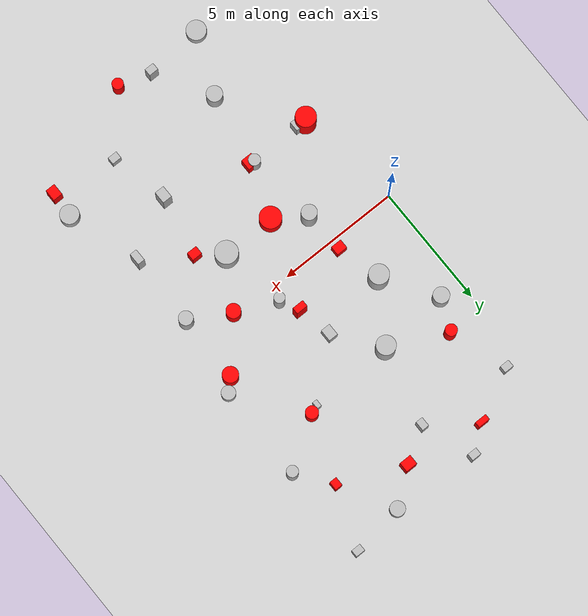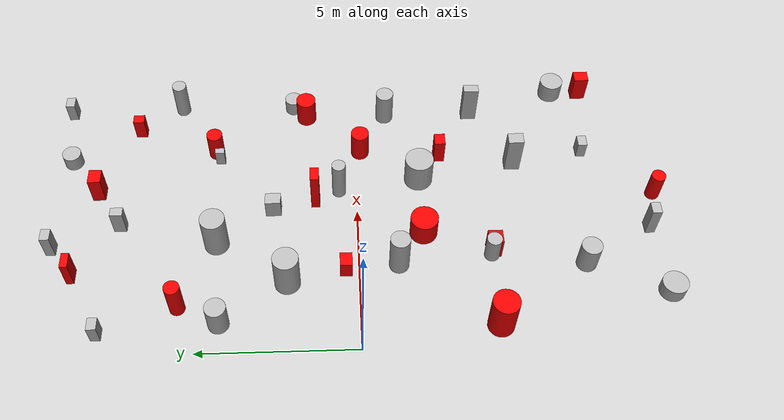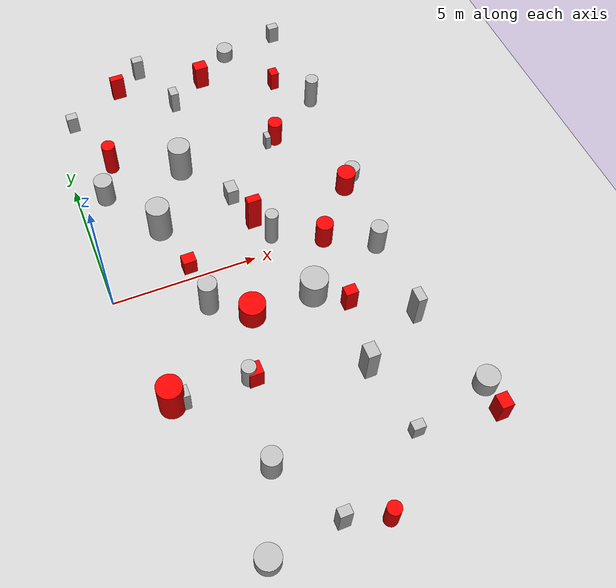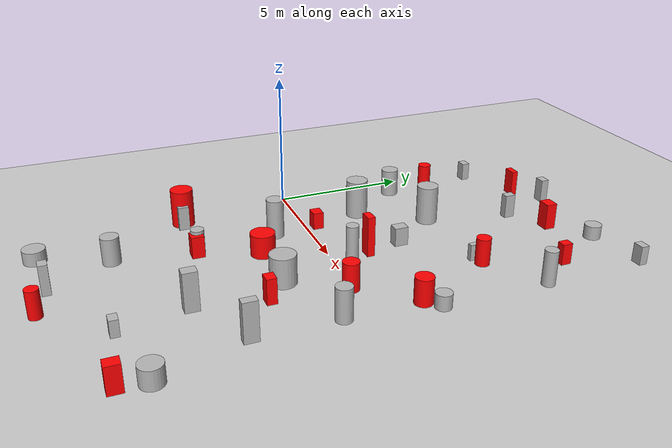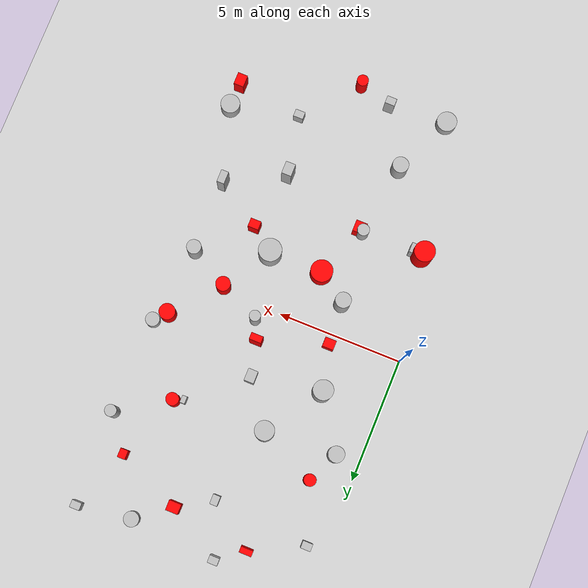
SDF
<sdf version="1.7">
 <world name="default">
  <model name="ground_plane">
   <static>1</static>
   <link name="link">
    <collision name="collision">
     <geometry><plane><normal>0 0 1</normal><size>100 100</size></plane></geometry>
     <surface>
      <contact><collide_bitmask>65535</collide_bitmask></contact>
      <friction><ode><mu>100</mu><mu2>50</mu2></ode></friction>
     </surface>
    </collision>
    <visual name="visual">
     <cast_shadows>0</cast_shadows>
     <geometry><plane><normal>0 0 1</normal><size>100 100</size></plane></geometry>
     <material>
      <script><uri>file://media/materials/scripts/gazebo.material</uri><name>Gazebo/Grey</name></script>
     </material>
    </visual>
   </link>
  </model>
  <model name="cylinder_0_0.7_0.7_1.0">
   <static>true</static>
   <pose>0.9762700785464951 4.30378732744839 0.5224415914984484 0 0 0</pose>
   <link name="link">
    <collision name="collision">
     <geometry>
      <cylinder><radius>0.3270964398016714</radius><length>1.0448831829968968</length></cylinder>
     </geometry>
     <surface>
      <friction><ode><mu>1.0</mu><mu2>1.0</mu2></ode></friction>
      <contact><ode><kp>1e+5</kp><kd>1</kd></ode></contact>
     </surface>
    </collision>
    <visual name="visual">
     <geometry>
      <cylinder><radius>0.3270964398016714</radius><length>1.0448831829968968</length></cylinder>
     </geometry>
    </visual>
    <inertial>
     <mass>1.0</mass>
     <inertia><ixx>0.145833</ixx><ixy>0</ixy><ixz>0</ixz><iyy>0.145833</iyy><iyz>0</iyz><izz>0.125</izz></inertia>
    </inertial>
   </link>
  </model>
  <model name="cylinder_1_0.6_0.6_1.5">
   <static>true</static>
   <pose>2.917882261333123 -1.2482557747461502 0.7318313802505146 0 0 0</pose>
   <link name="link">
    <collision name="collision">
     <geometry>
      <cylinder><radius>0.3150324556477333</radius><length>1.4636627605010293</length></cylinder>
     </geometry>
     <surface>
      <friction><ode><mu>1.0</mu><mu2>1.0</mu2></ode></friction>
      <contact><ode><kp>1e+5</kp><kd>1</kd></ode></contact>
     </surface>
    </collision>
    <visual name="visual">
     <geometry>
      <cylinder><radius>0.3150324556477333</radius><length>1.4636627605010293</length></cylinder>
     </geometry>
    </visual>
    <inertial>
     <mass>1.0</mass>
     <inertia><ixx>0.145833</ixx><ixy>0</ixy><ixz>0</ixz><iyy>0.145833</iyy><iyz>0</iyz><izz>0.125</izz></inertia>
    </inertial>
   </link>
  </model>
  <model name="cylinder_2_0.4_0.4_1.4">
   <static>true</static>
   <pose>5.834500761653292 0.5778983950580887 0.7127983191463305 0 0 0</pose>
   <link name="link">
    <collision name="collision">
     <geometry>
      <cylinder><radius>0.2213108174593661</radius><length>1.425596638292661</length></cylinder>
     </geometry>
     <surface>
      <friction><ode><mu>1.0</mu><mu2>1.0</mu2></ode></friction>
      <contact><ode><kp>1e+5</kp><kd>1</kd></ode></contact>
     </surface>
    </collision>
    <visual name="visual">
     <geometry>
      <cylinder><radius>0.2213108174593661</radius><length>1.425596638292661</length></cylinder>
     </geometry>
    </visual>
    <inertial>
     <mass>1.0</mass>
     <inertia><ixx>0.145833</ixx><ixy>0</ixy><ixz>0</ixz><iyy>0.145833</iyy><iyz>0</iyz><izz>0.125</izz></inertia>
    </inertial>
   </link>
  </model>
  <model name="cylinder_4_0.5_0.5_1.3">
   <static>true</static>
   <pose>9.572366844655281 5.983171284334471 0.6402645881432277 0 0 0</pose>
   <link name="link">
    <collision name="collision">
     <geometry>
      <cylinder><radius>0.23548232776067998</radius><length>1.2805291762864555</length></cylinder>
     </geometry>
     <surface>
      <friction><ode><mu>1.0</mu><mu2>1.0</mu2></ode></friction>
      <contact><ode><kp>1e+5</kp><kd>1</kd></ode></contact>
     </surface>
    </collision>
    <visual name="visual">
     <geometry>
      <cylinder><radius>0.23548232776067998</radius><length>1.2805291762864555</length></cylinder>
     </geometry>
    </visual>
    <inertial>
     <mass>1.0</mass>
     <inertia><ixx>0.145833</ixx><ixy>0</ixy><ixz>0</ixz><iyy>0.145833</iyy><iyz>0</iyz><izz>0.125</izz></inertia>
    </inertial>
   </link>
  </model>
  <model name="cylinder_5_0.6_0.6_1.0">
   <static>true</static>
   <pose>2.798420426550477 -7.132934251819072 0.5109241608750359 0 0 0</pose>
   <link name="link">
    <collision name="collision">
     <geometry>
      <cylinder><radius>0.3243985819971571</radius><length>1.0218483217500718</length></cylinder>
     </geometry>
     <surface>
      <friction><ode><mu>1.0</mu><mu2>1.0</mu2></ode></friction>
      <contact><ode><kp>1e+5</kp><kd>1</kd></ode></contact>
     </surface>
    </collision>
    <visual name="visual">
     <geometry>
      <cylinder><radius>0.3243985819971571</radius><length>1.0218483217500718</length></cylinder>
     </geometry>
    </visual>
    <inertial>
     <mass>1.0</mass>
     <inertia><ixx>0.145833</ixx><ixy>0</ixy><ixz>0</ixz><iyy>0.145833</iyy><iyz>0</iyz><izz>0.125</izz></inertia>
    </inertial>
   </link>
  </model>
  <model name="cylinder_7_0.8_0.8_1.4">
   <static>true</static>
   <pose>2.352709941517542 2.2419144544484286 0.7218740392573121 0 0 0</pose>
   <link name="link">
    <collision name="collision">
     <geometry>
      <cylinder><radius>0.404546089731045</radius><length>1.4437480785146242</length></cylinder>
     </geometry>
     <surface>
      <friction><ode><mu>1.0</mu><mu2>1.0</mu2></ode></friction>
      <contact><ode><kp>1e+5</kp><kd>1</kd></ode></contact>
     </surface>
    </collision>
    <visual name="visual">
     <geometry>
      <cylinder><radius>0.404546089731045</radius><length>1.4437480785146242</length></cylinder>
     </geometry>
    </visual>
    <inertial>
     <mass>1.0</mass>
     <inertia><ixx>0.145833</ixx><ixy>0</ixy><ixz>0</ixz><iyy>0.145833</iyy><iyz>0</iyz><izz>0.125</izz></inertia>
    </inertial>
   </link>
  </model>
  <model name="cylinder_12_0.6_0.6_0.5">
   <static>true</static>
   <pose>9.535221763806742 2.0969103949009202 0.26959389612716034 0 0 0</pose>
   <link name="link">
    <collision name="collision">
     <geometry>
      <cylinder><radius>0.2848420887729229</radius><length>0.5391877922543207</length></cylinder>
     </geometry>
     <surface>
      <friction><ode><mu>1.0</mu><mu2>1.0</mu2></ode></friction>
      <contact><ode><kp>1e+5</kp><kd>1</kd></ode></contact>
     </surface>
    </collision>
    <visual name="visual">
     <geometry>
      <cylinder><radius>0.2848420887729229</radius><length>0.5391877922543207</length></cylinder>
     </geometry>
    </visual>
    <inertial>
     <mass>1.0</mass>
     <inertia><ixx>0.145833</ixx><ixy>0</ixy><ixz>0</ixz><iyy>0.145833</iyy><iyz>0</iyz><izz>0.125</izz></inertia>
    </inertial>
   </link>
  </model>
  <model name="cylinder_16_0.8_0.8_0.5">
   <static>true</static>
   <pose>1.7302586962016626 -9.597849076250128 0.25234773809627353 0 0 0</pose>
   <link name="link">
    <collision name="collision">
     <geometry>
      <cylinder><radius>0.4033449610388691</radius><length>0.5046954761925471</length></cylinder>
     </geometry>
     <surface>
      <friction><ode><mu>1.0</mu><mu2>1.0</mu2></ode></friction>
      <contact><ode><kp>1e+5</kp><kd>1</kd></ode></contact>
     </surface>
    </collision>
    <visual name="visual">
     <geometry>
      <cylinder><radius>0.4033449610388691</radius><length>0.5046954761925471</length></cylinder>
     </geometry>
    </visual>
    <inertial>
     <mass>1.0</mass>
     <inertia><ixx>0.145833</ixx><ixy>0</ixy><ixz>0</ixz><iyy>0.145833</iyy><iyz>0</iyz><izz>0.125</izz></inertia>
    </inertial>
   </link>
  </model>
  <model name="cylinder_17_0.6_0.6_1.2">
   <static>true</static>
   <pose>9.054980230339702 -1.0574924276474533 0.5997396376587522 0 0 0</pose>
   <link name="link">
    <collision name="collision">
     <geometry>
      <cylinder><radius>0.2892310852565401</radius><length>1.1994792753175043</length></cylinder>
     </geometry>
     <surface>
      <friction><ode><mu>1.0</mu><mu2>1.0</mu2></ode></friction>
      <contact><ode><kp>1e+5</kp><kd>1</kd></ode></contact>
     </surface>
    </collision>
    <visual name="visual">
     <geometry>
      <cylinder><radius>0.2892310852565401</radius><length>1.1994792753175043</length></cylinder>
     </geometry>
    </visual>
    <inertial>
     <mass>1.0</mass>
     <inertia><ixx>0.145833</ixx><ixy>0</ixy><ixz>0</ixz><iyy>0.145833</iyy><iyz>0</iyz><izz>0.125</izz></inertia>
    </inertial>
   </link>
  </model>
  <model name="cylinder_18_0.9_0.9_1.1">
   <static>true</static>
   <pose>6.275956394049544 -2.0698851830603076 0.5406364363179293 0 0 0</pose>
   <link name="link">
    <collision name="collision">
     <geometry>
      <cylinder><radius>0.4645206085564558</radius><length>1.0812728726358587</length></cylinder>
     </geometry>
     <surface>
      <friction><ode><mu>1.0</mu><mu2>1.0</mu2></ode></friction>
      <contact><ode><kp>1e+5</kp><kd>1</kd></ode></contact>
     </surface>
    </collision>
    <visual name="visual">
     <geometry>
      <cylinder><radius>0.4645206085564558</radius><length>1.0812728726358587</length></cylinder>
     </geometry>
    </visual>
    <inertial>
     <mass>1.0</mass>
     <inertia><ixx>0.145833</ixx><ixy>0</ixy><ixz>0</ixz><iyy>0.145833</iyy><iyz>0</iyz><izz>0.125</izz></inertia>
    </inertial>
   </link>
  </model>
  <model name="cylinder_19_0.8_0.8_1.5">
   <static>true</static>
   <pose>3.850631801555318 4.50508559639281 0.7280418173616119 0 0 0</pose>
   <link name="link">
    <collision name="collision">
     <geometry>
      <cylinder><radius>0.3931970597688912</radius><length>1.4560836347232238</length></cylinder>
     </geometry>
     <surface>
      <friction><ode><mu>1.0</mu><mu2>1.0</mu2></ode></friction>
      <contact><ode><kp>1e+5</kp><kd>1</kd></ode></contact>
     </surface>
    </collision>
    <visual name="visual">
     <geometry>
      <cylinder><radius>0.3931970597688912</radius><length>1.4560836347232238</length></cylinder>
     </geometry>
    </visual>
    <inertial>
     <mass>1.0</mass>
     <inertia><ixx>0.145833</ixx><ixy>0</ixy><ixz>0</ixz><iyy>0.145833</iyy><iyz>0</iyz><izz>0.125</izz></inertia>
    </inertial>
   </link>
  </model>
  <model name="cylinder_20_0.5_0.5_0.9">
   <static>true</static>
   <pose>3.2034707498537003 -4.198447855791119 0.46438435047288307 0 0 0</pose>
   <link name="link">
    <collision name="collision">
     <geometry>
      <cylinder><radius>0.24064221926673507</radius><length>0.9287687009457661</length></cylinder>
     </geometry>
     <surface>
      <friction><ode><mu>1.0</mu><mu2>1.0</mu2></ode></friction>
      <contact><ode><kp>1e+5</kp><kd>1</kd></ode></contact>
     </surface>
    </collision>
    <visual name="visual">
     <geometry>
      <cylinder><radius>0.24064221926673507</radius><length>0.9287687009457661</length></cylinder>
     </geometry>
    </visual>
    <inertial>
     <mass>1.0</mass>
     <inertia><ixx>0.145833</ixx><ixy>0</ixy><ixz>0</ixz><iyy>0.145833</iyy><iyz>0</iyz><izz>0.125</izz></inertia>
    </inertial>
   </link>
  </model>
  <model name="cylinder_21_0.8_0.8_0.7">
   <static>true</static>
   <pose>9.976940131357331 -7.011033906840125 0.3312464673381874 0 0 0</pose>
   <link name="link">
    <collision name="collision">
     <geometry>
      <cylinder><radius>0.3846678692851533</radius><length>0.6624929346763748</length></cylinder>
     </geometry>
     <surface>
      <friction><ode><mu>1.0</mu><mu2>1.0</mu2></ode></friction>
      <contact><ode><kp>1e+5</kp><kd>1</kd></ode></contact>
     </surface>
    </collision>
    <visual name="visual">
     <geometry>
      <cylinder><radius>0.3846678692851533</radius><length>0.6624929346763748</length></cylinder>
     </geometry>
    </visual>
    <inertial>
     <mass>1.0</mass>
     <inertia><ixx>0.145833</ixx><ixy>0</ixy><ixz>0</ixz><iyy>0.145833</iyy><iyz>0</iyz><izz>0.125</izz></inertia>
    </inertial>
   </link>
  </model>
  <model name="cylinder_23_0.6_0.6_0.5">
   <static>true</static>
   <pose>7.327646518572585 9.510430100057718 0.255857042092501 0 0 0</pose>
   <link name="link">
    <collision name="collision">
     <geometry>
      <cylinder><radius>0.30799341934350916</radius><length>0.511714084185002</length></cylinder>
     </geometry>
     <surface>
      <friction><ode><mu>1.0</mu><mu2>1.0</mu2></ode></friction>
      <contact><ode><kp>1e+5</kp><kd>1</kd></ode></contact>
     </surface>
    </collision>
    <visual name="visual">
     <geometry>
      <cylinder><radius>0.30799341934350916</radius><length>0.511714084185002</length></cylinder>
     </geometry>
    </visual>
    <inertial>
     <mass>1.0</mass>
     <inertia><ixx>0.145833</ixx><ixy>0</ixy><ixz>0</ixz><iyy>0.145833</iyy><iyz>0</iyz><izz>0.125</izz></inertia>
    </inertial>
   </link>
  </model>
  <model name="box_1_0.4_0.3_1.1">
   <static>true</static>
   <pose>4.088288038470655 -9.363221409373843 0.5607392007498817 0 0 0</pose>
   <link name="link">
    <collision name="collision">
     <geometry><box><size>0.4 0.3 1.1</size></box></geometry>
     <surface>
      <friction><ode><mu>1.0</mu><mu2>1.0</mu2></ode></friction>
      <contact><ode><kp>1e+5</kp><kd>1</kd></ode></contact>
     </surface>
    </collision>
    <visual name="visual"><geometry><box><size>0.4 0.3 1.1</size></box></geometry></visual>
    <inertial>
     <mass>1.0</mass>
     <inertia>
      <ixx>0.166667</ixx>
      <ixy>0</ixy>
      <ixz>0</ixz>
      <iyy>0.166667</iyy>
      <iyz>0</iyz>
      <izz>0.166667</izz>
     </inertia>
    </inertial>
   </link>
  </model>
  <model name="box_4_0.4_0.3_0.7">
   <static>true</static>
   <pose>0.731584222174444 7.933425860806842 0.35844849219923697 0 0 0</pose>
   <link name="link">
    <collision name="collision">
     <geometry><box><size>0.4 0.3 0.7</size></box></geometry>
     <surface>
      <friction><ode><mu>1.0</mu><mu2>1.0</mu2></ode></friction>
      <contact><ode><kp>1e+5</kp><kd>1</kd></ode></contact>
     </surface>
    </collision>
    <visual name="visual"><geometry><box><size>0.4 0.3 0.7</size></box></geometry></visual>
    <inertial>
     <mass>1.0</mass>
     <inertia>
      <ixx>0.166667</ixx>
      <ixy>0</ixy>
      <ixz>0</ixz>
      <iyy>0.166667</iyy>
      <iyz>0</iyz>
      <izz>0.166667</izz>
     </inertia>
    </inertial>
   </link>
  </model>
  <model name="box_6_0.4_0.3_0.6">
   <static>true</static>
   <pose>7.277112118464629 -7.649362880759338 0.31603405317257666 0 0 0</pose>
   <link name="link">
    <collision name="collision">
     <geometry><box><size>0.4 0.3 0.6</size></box></geometry>
     <surface>
      <friction><ode><mu>1.0</mu><mu2>1.0</mu2></ode></friction>
      <contact><ode><kp>1e+5</kp><kd>1</kd></ode></contact>
     </surface>
    </collision>
    <visual name="visual"><geometry><box><size>0.4 0.3 0.6</size></box></geometry></visual>
    <inertial>
     <mass>1.0</mass>
     <inertia>
      <ixx>0.166667</ixx>
      <ixy>0</ixy>
      <ixz>0</ixz>
      <iyy>0.166667</iyy>
      <iyz>0</iyz>
      <izz>0.166667</izz>
     </inertia>
    </inertial>
   </link>
  </model>
  <model name="box_9_0.2_0.3_0.6">
   <static>true</static>
   <pose>7.211023476575875 4.540885254226566 0.3157413996455638 0 0 0</pose>
   <link name="link">
    <collision name="collision">
     <geometry><box><size>0.2 0.3 0.6</size></box></geometry>
     <surface>
      <friction><ode><mu>1.0</mu><mu2>1.0</mu2></ode></friction>
      <contact><ode><kp>1e+5</kp><kd>1</kd></ode></contact>
     </surface>
    </collision>
    <visual name="visual"><geometry><box><size>0.2 0.3 0.6</size></box></geometry></visual>
    <inertial>
     <mass>1.0</mass>
     <inertia>
      <ixx>0.166667</ixx>
      <ixy>0</ixy>
      <ixz>0</ixz>
      <iyy>0.166667</iyy>
      <iyz>0</iyz>
      <izz>0.166667</izz>
     </inertia>
    </inertial>
   </link>
  </model>
  <model name="box_10_0.4_0.5_0.7">
   <static>true</static>
   <pose>5.135572854737784 2.721221108942826 0.3302694112426282 0 0 0</pose>
   <link name="link">
    <collision name="collision">
     <geometry><box><size>0.4 0.5 0.7</size></box></geometry>
     <surface>
      <friction><ode><mu>1.0</mu><mu2>1.0</mu2></ode></friction>
      <contact><ode><kp>1e+5</kp><kd>1</kd></ode></contact>
     </surface>
    </collision>
    <visual name="visual"><geometry><box><size>0.4 0.5 0.7</size></box></geometry></visual>
    <inertial>
     <mass>1.0</mass>
     <inertia>
      <ixx>0.166667</ixx>
      <ixy>0</ixy>
      <ixz>0</ixz>
      <iyy>0.166667</iyy>
      <iyz>0</iyz>
      <izz>0.166667</izz>
     </inertia>
    </inertial>
   </link>
  </model>
  <model name="box_12_0.4_0.3_0.7">
   <static>true</static>
   <pose>9.485124256361004 9.806900031217879 0.3314772130233027 0 0 0</pose>
   <link name="link">
    <collision name="collision">
     <geometry><box><size>0.4 0.3 0.7</size></box></geometry>
     <surface>
      <friction><ode><mu>1.0</mu><mu2>1.0</mu2></ode></friction>
      <contact><ode><kp>1e+5</kp><kd>1</kd></ode></contact>
     </surface>
    </collision>
    <visual name="visual"><geometry><box><size>0.4 0.3 0.7</size></box></geometry></visual>
    <inertial>
     <mass>1.0</mass>
     <inertia>
      <ixx>0.166667</ixx>
      <ixy>0</ixy>
      <ixz>0</ixz>
      <iyy>0.166667</iyy>
      <iyz>0</iyz>
      <izz>0.166667</izz>
     </inertia>
    </inertial>
   </link>
  </model>
  <model name="box_14_0.3_0.4_0.9">
   <static>true</static>
   <pose>1.09375617322838 -4.258969601607405 0.457428434666782 0 0 0</pose>
   <link name="link">
    <collision name="collision">
     <geometry><box><size>0.3 0.4 0.9</size></box></geometry>
     <surface>
      <friction><ode><mu>1.0</mu><mu2>1.0</mu2></ode></friction>
      <contact><ode><kp>1e+5</kp><kd>1</kd></ode></contact>
     </surface>
    </collision>
    <visual name="visual"><geometry><box><size>0.3 0.4 0.9</size></box></geometry></visual>
    <inertial>
     <mass>1.0</mass>
     <inertia>
      <ixx>0.166667</ixx>
      <ixy>0</ixy>
      <ixz>0</ixz>
      <iyy>0.166667</iyy>
      <iyz>0</iyz>
      <izz>0.166667</izz>
     </inertia>
    </inertial>
   </link>
  </model>
  <model name="box_15_0.3_0.4_0.9">
   <static>true</static>
   <pose>4.614181982549523 7.6344042466767945 0.43952844803871427 0 0 0</pose>
   <link name="link">
    <collision name="collision">
     <geometry><box><size>0.3 0.4 0.9</size></box></geometry>
     <surface>
      <friction><ode><mu>1.0</mu><mu2>1.0</mu2></ode></friction>
      <contact><ode><kp>1e+5</kp><kd>1</kd></ode></contact>
     </surface>
    </collision>
    <visual name="visual"><geometry><box><size>0.3 0.4 0.9</size></box></geometry></visual>
    <inertial>
     <mass>1.0</mass>
     <inertia>
      <ixx>0.166667</ixx>
      <ixy>0</ixy>
      <ixz>0</ixz>
      <iyy>0.166667</iyy>
      <iyz>0</iyz>
      <izz>0.166667</izz>
     </inertia>
    </inertial>
   </link>
  </model>
  <model name="box_16_0.4_0.5_1.4">
   <static>true</static>
   <pose>6.783782445173049 -5.245163479687225 0.7212917998489652 0 0 0</pose>
   <link name="link">
    <collision name="collision">
     <geometry><box><size>0.4 0.5 1.4</size></box></geometry>
     <surface>
      <friction><ode><mu>1.0</mu><mu2>1.0</mu2></ode></friction>
      <contact><ode><kp>1e+5</kp><kd>1</kd></ode></contact>
     </surface>
    </collision>
    <visual name="visual"><geometry><box><size>0.4 0.5 1.4</size></box></geometry></visual>
    <inertial>
     <mass>1.0</mass>
     <inertia>
      <ixx>0.166667</ixx>
      <ixy>0</ixy>
      <ixz>0</ixz>
      <iyy>0.166667</iyy>
      <iyz>0</iyz>
      <izz>0.166667</izz>
     </inertia>
    </inertial>
   </link>
  </model>
  <model name="box_17_0.3_0.5_1.4">
   <static>true</static>
   <pose>9.042853945908416 -3.9994216104814084 0.69315233304328 0 0 0</pose>
   <link name="link">
    <collision name="collision">
     <geometry><box><size>0.3 0.5 1.4</size></box></geometry>
     <surface>
      <friction><ode><mu>1.0</mu><mu2>1.0</mu2></ode></friction>
      <contact><ode><kp>1e+5</kp><kd>1</kd></ode></contact>
     </surface>
    </collision>
    <visual name="visual"><geometry><box><size>0.3 0.5 1.4</size></box></geometry></visual>
    <inertial>
     <mass>1.0</mass>
     <inertia>
      <ixx>0.166667</ixx>
      <ixy>0</ixy>
      <ixz>0</ixz>
      <iyy>0.166667</iyy>
      <iyz>0</iyz>
      <izz>0.166667</izz>
     </inertia>
    </inertial>
   </link>
  </model>
  <model name="box_21_0.4_0.3_0.9">
   <static>true</static>
   <pose>3.815695523130591 9.746975141479364 0.4322723129983933 0 0 0</pose>
   <link name="link">
    <collision name="collision">
     <geometry><box><size>0.4 0.3 0.9</size></box></geometry>
     <surface>
      <friction><ode><mu>1.0</mu><mu2>1.0</mu2></ode></friction>
      <contact><ode><kp>1e+5</kp><kd>1</kd></ode></contact>
     </surface>
    </collision>
    <visual name="visual"><geometry><box><size>0.4 0.3 0.9</size></box></geometry></visual>
    <inertial>
     <mass>1.0</mass>
     <inertia>
      <ixx>0.166667</ixx>
      <ixy>0</ixy>
      <ixz>0</ixz>
      <iyy>0.166667</iyy>
      <iyz>0</iyz>
      <izz>0.166667</izz>
     </inertia>
    </inertial>
   </link>
  </model>
  <model name="dynamic_cylinder_0_0.6_0.6_1.0">
   <pose>7.47113654581543 -0.16215536583310985 0.5163342937356803 0 0 0</pose>
   <link name="link">
    <collision name="collision">
     <geometry>
      <cylinder><radius>0.2949627679677428</radius><length>1.0326685874713606</length></cylinder>
     </geometry>
     <surface>
      <friction><ode><mu>1.0</mu><mu2>1.0</mu2></ode></friction>
      <contact><ode><kp>1e+5</kp><kd>1</kd></ode></contact>
     </surface>
    </collision>
    <visual name="visual">
     <geometry>
      <cylinder><radius>0.2949627679677428</radius><length>1.0326685874713606</length></cylinder>
     </geometry>
     <material><ambient>1 0 0 1</ambient><diffuse>1 0 0 1</diffuse><specular>0.5 0.5 0.5 1</specular></material>
    </visual>
    <inertial>
     <mass>1.0</mass>
     <inertia><ixx>0.145833</ixx><ixy>0</ixy><ixz>0</ixz><iyy>0.145833</iyy><iyz>0</iyz><izz>0.125</izz></inertia>
    </inertial>
    <gravity>0</gravity>
   </link>
   <plugin name="obstacle_motion" filename="/home/he/quad/navigation/DRL-robot-navigation/catkin_ws/src/multi_robot_scenario/plugins/libobstaclePathPlugin.so">
    <orientation>false</orientation>
    <loop>1</loop>
    <velocity>0.2978808897948117</velocity>
    <path>
     <waypoint>7.47113654581543 -0.16215536583310985 0.5163342937356803</waypoint>
     <waypoint>7.979221844540632 -6.289642049536475 0.5163342937356803</waypoint>
    </path>
   </plugin>
   <static>0</static>
  </model>
  <model name="dynamic_cylinder_2_0.5_0.5_1.3">
   <pose>1.5541884863368072 5.583588666036681 0.635436378284324 0 0 0</pose>
   <link name="link">
    <collision name="collision">
     <geometry>
      <cylinder><radius>0.24245194568657008</radius><length>1.270872756568648</length></cylinder>
     </geometry>
     <surface>
      <friction><ode><mu>1.0</mu><mu2>1.0</mu2></ode></friction>
      <contact><ode><kp>1e+5</kp><kd>1</kd></ode></contact>
     </surface>
    </collision>
    <visual name="visual">
     <geometry>
      <cylinder><radius>0.24245194568657008</radius><length>1.270872756568648</length></cylinder>
     </geometry>
     <material><ambient>1 0 0 1</ambient><diffuse>1 0 0 1</diffuse><specular>0.5 0.5 0.5 1</specular></material>
    </visual>
    <inertial>
     <mass>1.0</mass>
     <inertia><ixx>0.145833</ixx><ixy>0</ixy><ixz>0</ixz><iyy>0.145833</iyy><iyz>0</iyz><izz>0.125</izz></inertia>
    </inertial>
    <gravity>0</gravity>
   </link>
   <plugin name="obstacle_motion" filename="/home/he/quad/navigation/DRL-robot-navigation/catkin_ws/src/multi_robot_scenario/plugins/libobstaclePathPlugin.so">
    <orientation>false</orientation>
    <loop>1</loop>
    <velocity>0.4207681690423199</velocity>
    <path>
     <waypoint>1.5541884863368072 5.583588666036681 0.635436378284324</waypoint>
     <waypoint>5.911807370864262 -3.1093907849137548 0.635436378284324</waypoint>
    </path>
   </plugin>
   <static>0</static>
  </model>
  <model name="dynamic_cylinder_9_0.9_0.9_0.8">
   <pose>4.114200879792154 -2.0953351292732636 0.4179887711701276 0 0 0</pose>
   <link name="link">
    <collision name="collision">
     <geometry>
      <cylinder><radius>0.44455981859429405</radius><length>0.8359775423402552</length></cylinder>
     </geometry>
     <surface>
      <friction><ode><mu>1.0</mu><mu2>1.0</mu2></ode></friction>
      <contact><ode><kp>1e+5</kp><kd>1</kd></ode></contact>
     </surface>
    </collision>
    <visual name="visual">
     <geometry>
      <cylinder><radius>0.44455981859429405</radius><length>0.8359775423402552</length></cylinder>
     </geometry>
     <material><ambient>1 0 0 1</ambient><diffuse>1 0 0 1</diffuse><specular>0.5 0.5 0.5 1</specular></material>
    </visual>
    <inertial>
     <mass>1.0</mass>
     <inertia><ixx>0.145833</ixx><ixy>0</ixy><ixz>0</ixz><iyy>0.145833</iyy><iyz>0</iyz><izz>0.125</izz></inertia>
    </inertial>
    <gravity>0</gravity>
   </link>
   <plugin name="obstacle_motion" filename="/home/he/quad/navigation/DRL-robot-navigation/catkin_ws/src/multi_robot_scenario/plugins/libobstaclePathPlugin.so">
    <orientation>false</orientation>
    <loop>1</loop>
    <velocity>0.4183313819643254</velocity>
    <path>
     <waypoint>4.114200879792154 -2.0953351292732636 0.4179887711701276</waypoint>
     <waypoint>-3.7832004571336793 4.372527806823038 0.4179887711701276</waypoint>
    </path>
   </plugin>
   <static>0</static>
  </model>
  <model name="dynamic_cylinder_11_0.5_0.5_1.0">
   <pose>7.583466753748091 4.696275492611221 0.5031561120116943 0 0 0</pose>
   <link name="link">
    <collision name="collision">
     <geometry>
      <cylinder><radius>0.2591778422902213</radius><length>1.0063122240233886</length></cylinder>
     </geometry>
     <surface>
      <friction><ode><mu>1.0</mu><mu2>1.0</mu2></ode></friction>
      <contact><ode><kp>1e+5</kp><kd>1</kd></ode></contact>
     </surface>
    </collision>
    <visual name="visual">
     <geometry>
      <cylinder><radius>0.2591778422902213</radius><length>1.0063122240233886</length></cylinder>
     </geometry>
     <material><ambient>1 0 0 1</ambient><diffuse>1 0 0 1</diffuse><specular>0.5 0.5 0.5 1</specular></material>
    </visual>
    <inertial>
     <mass>1.0</mass>
     <inertia><ixx>0.145833</ixx><ixy>0</ixy><ixz>0</ixz><iyy>0.145833</iyy><iyz>0</iyz><izz>0.125</izz></inertia>
    </inertial>
    <gravity>0</gravity>
   </link>
   <plugin name="obstacle_motion" filename="/home/he/quad/navigation/DRL-robot-navigation/catkin_ws/src/multi_robot_scenario/plugins/libobstaclePathPlugin.so">
    <orientation>false</orientation>
    <loop>1</loop>
    <velocity>0.4999425734350896</velocity>
    <path>
     <waypoint>7.583466753748091 4.696275492611221 0.5031561120116943</waypoint>
     <waypoint>-6.470012222218797 8.783218181747408 0.5031561120116943</waypoint>
    </path>
   </plugin>
   <static>0</static>
  </model>
  <model name="dynamic_cylinder_12_0.8_0.8_1.4">
   <pose>0.6981639676640263 -4.195039148801431 0.7108595334354166 0 0 0</pose>
   <link name="link">
    <collision name="collision">
     <geometry>
      <cylinder><radius>0.4171824195503978</radius><length>1.4217190668708333</length></cylinder>
     </geometry>
     <surface>
      <friction><ode><mu>1.0</mu><mu2>1.0</mu2></ode></friction>
      <contact><ode><kp>1e+5</kp><kd>1</kd></ode></contact>
     </surface>
    </collision>
    <visual name="visual">
     <geometry>
      <cylinder><radius>0.4171824195503978</radius><length>1.4217190668708333</length></cylinder>
     </geometry>
     <material><ambient>1 0 0 1</ambient><diffuse>1 0 0 1</diffuse><specular>0.5 0.5 0.5 1</specular></material>
    </visual>
    <inertial>
     <mass>1.0</mass>
     <inertia><ixx>0.145833</ixx><ixy>0</ixy><ixz>0</ixz><iyy>0.145833</iyy><iyz>0</iyz><izz>0.125</izz></inertia>
    </inertial>
    <gravity>0</gravity>
   </link>
   <plugin name="obstacle_motion" filename="/home/he/quad/navigation/DRL-robot-navigation/catkin_ws/src/multi_robot_scenario/plugins/libobstaclePathPlugin.so">
    <orientation>false</orientation>
    <loop>1</loop>
    <velocity>0.44157915667375247</velocity>
    <path>
     <waypoint>0.6981639676640263 -4.195039148801431 0.7108595334354166</waypoint>
     <waypoint>-3.9165288522150687 1.8213076166798032 0.7108595334354166</waypoint>
    </path>
   </plugin>
   <static>0</static>
  </model>
  <model name="dynamic_cylinder_13_0.5_0.5_1.0">
   <pose>5.424509259318205 -9.756576861134825 0.5034314792436567 0 0 0</pose>
   <link name="link">
    <collision name="collision">
     <geometry>
      <cylinder><radius>0.22930291023431726</radius><length>1.0068629584873134</length></cylinder>
     </geometry>
     <surface>
      <friction><ode><mu>1.0</mu><mu2>1.0</mu2></ode></friction>
      <contact><ode><kp>1e+5</kp><kd>1</kd></ode></contact>
     </surface>
    </collision>
    <visual name="visual">
     <geometry>
      <cylinder><radius>0.22930291023431726</radius><length>1.0068629584873134</length></cylinder>
     </geometry>
     <material><ambient>1 0 0 1</ambient><diffuse>1 0 0 1</diffuse><specular>0.5 0.5 0.5 1</specular></material>
    </visual>
    <inertial>
     <mass>1.0</mass>
     <inertia><ixx>0.145833</ixx><ixy>0</ixy><ixz>0</ixz><iyy>0.145833</iyy><iyz>0</iyz><izz>0.125</izz></inertia>
    </inertial>
    <gravity>0</gravity>
   </link>
   <plugin name="obstacle_motion" filename="/home/he/quad/navigation/DRL-robot-navigation/catkin_ws/src/multi_robot_scenario/plugins/libobstaclePathPlugin.so">
    <orientation>false</orientation>
    <loop>1</loop>
    <velocity>0.42105594850423567</velocity>
    <path>
     <waypoint>5.424509259318205 -9.756576861134825 0.5034314792436567</waypoint>
     <waypoint>-3.54340924903825 -5.408651106161004 0.5034314792436567</waypoint>
    </path>
   </plugin>
   <static>0</static>
  </model>
  <model name="dynamic_cylinder_15_0.6_0.6_1.0">
   <pose>9.073513928546259 1.646394661041107 0.4783518129302421 0 0 0</pose>
   <link name="link">
    <collision name="collision">
     <geometry>
      <cylinder><radius>0.32348465408412763</radius><length>0.9567036258604842</length></cylinder>
     </geometry>
     <surface>
      <friction><ode><mu>1.0</mu><mu2>1.0</mu2></ode></friction>
      <contact><ode><kp>1e+5</kp><kd>1</kd></ode></contact>
     </surface>
    </collision>
    <visual name="visual">
     <geometry>
      <cylinder><radius>0.32348465408412763</radius><length>0.9567036258604842</length></cylinder>
     </geometry>
     <material><ambient>1 0 0 1</ambient><diffuse>1 0 0 1</diffuse><specular>0.5 0.5 0.5 1</specular></material>
    </visual>
    <inertial>
     <mass>1.0</mass>
     <inertia><ixx>0.145833</ixx><ixy>0</ixy><ixz>0</ixz><iyy>0.145833</iyy><iyz>0</iyz><izz>0.125</izz></inertia>
    </inertial>
    <gravity>0</gravity>
   </link>
   <plugin name="obstacle_motion" filename="/home/he/quad/navigation/DRL-robot-navigation/catkin_ws/src/multi_robot_scenario/plugins/libobstaclePathPlugin.so">
    <orientation>false</orientation>
    <loop>1</loop>
    <velocity>0.20628502078031916</velocity>
    <path>
     <waypoint>9.073513928546259 1.646394661041107 0.4783518129302421</waypoint>
     <waypoint>-7.85054864462391 -4.24910995438877 0.4783518129302421</waypoint>
    </path>
   </plugin>
   <static>0</static>
  </model>
  <model name="dynamic_box_0_0.5_0.2_1.0">
   <pose>2.7924448592748323 8.97080602257682 0.49520995421813757 0 0 0</pose>
   <link name="link">
    <collision name="collision">
     <geometry><box><size>0.4987445878878905 0.2388067283116099 0.9904199084362751</size></box></geometry>
     <surface>
      <friction><ode><mu>1.0</mu><mu2>1.0</mu2></ode></friction>
      <contact><ode><kp>1e+5</kp><kd>1</kd></ode></contact>
     </surface>
    </collision>
    <visual name="visual">
     <geometry><box><size>0.4987445878878905 0.2388067283116099 0.9904199084362751</size></box></geometry>
     <material><ambient>1 0 0 1</ambient><diffuse>1 0 0 1</diffuse><specular>0.5 0.5 0.5 1</specular></material>
    </visual>
    <inertial>
     <mass>1.0</mass>
     <inertia>
      <ixx>0.166667</ixx>
      <ixy>0</ixy>
      <ixz>0</ixz>
      <iyy>0.166667</iyy>
      <iyz>0</iyz>
      <izz>0.166667</izz>
     </inertia>
    </inertial>
    <gravity>0</gravity>
   </link>
   <plugin name="obstacle_motion" filename="/home/he/quad/navigation/DRL-robot-navigation/catkin_ws/src/multi_robot_scenario/plugins/libobstaclePathPlugin.so">
    <orientation>false</orientation>
    <loop>1</loop>
    <velocity>0.2556045760938149</velocity>
    <path>
     <waypoint>2.7924448592748323 8.97080602257682 0.49520995421813757</waypoint>
     <waypoint>5.5655233459288755 6.966905395800119 0.49520995421813757</waypoint>
    </path>
   </plugin>
   <static>0</static>
  </model>
  <model name="dynamic_box_4_0.5_0.4_0.6">
   <pose>2.7892554894802046 0.4135558296510702 0.32047873826184686 0 0 0</pose>
   <link name="link">
    <collision name="collision">
     <geometry><box><size>0.458336902419736 0.385297094770773 0.6409574765236937</size></box></geometry>
     <surface>
      <friction><ode><mu>1.0</mu><mu2>1.0</mu2></ode></friction>
      <contact><ode><kp>1e+5</kp><kd>1</kd></ode></contact>
     </surface>
    </collision>
    <visual name="visual">
     <geometry><box><size>0.458336902419736 0.385297094770773 0.6409574765236937</size></box></geometry>
     <material><ambient>1 0 0 1</ambient><diffuse>1 0 0 1</diffuse><specular>0.5 0.5 0.5 1</specular></material>
    </visual>
    <inertial>
     <mass>1.0</mass>
     <inertia>
      <ixx>0.166667</ixx>
      <ixy>0</ixy>
      <ixz>0</ixz>
      <iyy>0.166667</iyy>
      <iyz>0</iyz>
      <izz>0.166667</izz>
     </inertia>
    </inertial>
    <gravity>0</gravity>
   </link>
   <plugin name="obstacle_motion" filename="/home/he/quad/navigation/DRL-robot-navigation/catkin_ws/src/multi_robot_scenario/plugins/libobstaclePathPlugin.so">
    <orientation>false</orientation>
    <loop>1</loop>
    <velocity>0.49020134061109466</velocity>
    <path>
     <waypoint>2.7892554894802046 0.4135558296510702 0.32047873826184686</waypoint>
     <waypoint>-2.041627703301245 5.490019097684041 0.32047873826184686</waypoint>
    </path>
   </plugin>
   <static>0</static>
  </model>
  <model name="dynamic_box_7_0.5_0.4_1.0">
   <pose>5.973784977678054 8.469110764082131 0.4931360431646574 0 0 0</pose>
   <link name="link">
    <collision name="collision">
     <geometry><box><size>0.495156148904485 0.40919907524901544 0.9862720863293148</size></box></geometry>
     <surface>
      <friction><ode><mu>1.0</mu><mu2>1.0</mu2></ode></friction>
      <contact><ode><kp>1e+5</kp><kd>1</kd></ode></contact>
     </surface>
    </collision>
    <visual name="visual">
     <geometry><box><size>0.495156148904485 0.40919907524901544 0.9862720863293148</size></box></geometry>
     <material><ambient>1 0 0 1</ambient><diffuse>1 0 0 1</diffuse><specular>0.5 0.5 0.5 1</specular></material>
    </visual>
    <inertial>
     <mass>1.0</mass>
     <inertia>
      <ixx>0.166667</ixx>
      <ixy>0</ixy>
      <ixz>0</ixz>
      <iyy>0.166667</iyy>
      <iyz>0</iyz>
      <izz>0.166667</izz>
     </inertia>
    </inertial>
    <gravity>0</gravity>
   </link>
   <plugin name="obstacle_motion" filename="/home/he/quad/navigation/DRL-robot-navigation/catkin_ws/src/multi_robot_scenario/plugins/libobstaclePathPlugin.so">
    <orientation>false</orientation>
    <loop>1</loop>
    <velocity>0.37644543813058984</velocity>
    <path>
     <waypoint>5.973784977678054 8.469110764082131 0.4931360431646574</waypoint>
     <waypoint>-4.016927109123678 -2.2319176566178944 0.4931360431646574</waypoint>
    </path>
   </plugin>
   <static>0</static>
  </model>
  <model name="dynamic_box_8_0.3_0.4_0.8">
   <pose>8.559523331967156 7.337218273187499 0.3881685763685247 0 0 0</pose>
   <link name="link">
    <collision name="collision">
     <geometry><box><size>0.3139681711358052 0.36813517661293405 0.7763371527370494</size></box></geometry>
     <surface>
      <friction><ode><mu>1.0</mu><mu2>1.0</mu2></ode></friction>
      <contact><ode><kp>1e+5</kp><kd>1</kd></ode></contact>
     </surface>
    </collision>
    <visual name="visual">
     <geometry><box><size>0.3139681711358052 0.36813517661293405 0.7763371527370494</size></box></geometry>
     <material><ambient>1 0 0 1</ambient><diffuse>1 0 0 1</diffuse><specular>0.5 0.5 0.5 1</specular></material>
    </visual>
    <inertial>
     <mass>1.0</mass>
     <inertia>
      <ixx>0.166667</ixx>
      <ixy>0</ixy>
      <ixz>0</ixz>
      <iyy>0.166667</iyy>
      <iyz>0</iyz>
      <izz>0.166667</izz>
     </inertia>
    </inertial>
    <gravity>0</gravity>
   </link>
   <plugin name="obstacle_motion" filename="/home/he/quad/navigation/DRL-robot-navigation/catkin_ws/src/multi_robot_scenario/plugins/libobstaclePathPlugin.so">
    <orientation>false</orientation>
    <loop>1</loop>
    <velocity>0.31085706204189484</velocity>
    <path>
     <waypoint>8.559523331967156 7.337218273187499 0.3881685763685247</waypoint>
     <waypoint>6.323015045327367 8.229017507015246 0.3881685763685247</waypoint>
    </path>
   </plugin>
   <static>0</static>
  </model>
  <model name="dynamic_box_9_0.5_0.5_0.8">
   <pose>3.36436459085542 -4.265666339192114 0.40426397977720024 0 0 0</pose>
   <link name="link">
    <collision name="collision">
     <geometry><box><size>0.46647951216321304 0.45809320350302585 0.8085279595544005</size></box></geometry>
     <surface>
      <friction><ode><mu>1.0</mu><mu2>1.0</mu2></ode></friction>
      <contact><ode><kp>1e+5</kp><kd>1</kd></ode></contact>
     </surface>
    </collision>
    <visual name="visual">
     <geometry><box><size>0.46647951216321304 0.45809320350302585 0.8085279595544005</size></box></geometry>
     <material><ambient>1 0 0 1</ambient><diffuse>1 0 0 1</diffuse><specular>0.5 0.5 0.5 1</specular></material>
    </visual>
    <inertial>
     <mass>1.0</mass>
     <inertia>
      <ixx>0.166667</ixx>
      <ixy>0</ixy>
      <ixz>0</ixz>
      <iyy>0.166667</iyy>
      <iyz>0</iyz>
      <izz>0.166667</izz>
     </inertia>
    </inertial>
    <gravity>0</gravity>
   </link>
   <plugin name="obstacle_motion" filename="/home/he/quad/navigation/DRL-robot-navigation/catkin_ws/src/multi_robot_scenario/plugins/libobstaclePathPlugin.so">
    <orientation>false</orientation>
    <loop>1</loop>
    <velocity>0.48265541570541437</velocity>
    <path>
     <waypoint>3.36436459085542 -4.265666339192114 0.40426397977720024</waypoint>
     <waypoint>-9.610750653813993 -2.0155523268418136 0.40426397977720024</waypoint>
    </path>
   </plugin>
   <static>0</static>
  </model>
  <model name="dynamic_box_11_0.5_0.3_1.5">
   <pose>5.465182521340463 1.3538549767368817 0.7463334967321331 0 0 0</pose>
   <link name="link">
    <collision name="collision">
     <geometry><box><size>0.4814768410891887 0.2733708827061688 1.4926669934642662</size></box></geometry>
     <surface>
      <friction><ode><mu>1.0</mu><mu2>1.0</mu2></ode></friction>
      <contact><ode><kp>1e+5</kp><kd>1</kd></ode></contact>
     </surface>
    </collision>
    <visual name="visual">
     <geometry><box><size>0.4814768410891887 0.2733708827061688 1.4926669934642662</size></box></geometry>
     <material><ambient>1 0 0 1</ambient><diffuse>1 0 0 1</diffuse><specular>0.5 0.5 0.5 1</specular></material>
    </visual>
    <inertial>
     <mass>1.0</mass>
     <inertia>
      <ixx>0.166667</ixx>
      <ixy>0</ixy>
      <ixz>0</ixz>
      <iyy>0.166667</iyy>
      <iyz>0</iyz>
      <izz>0.166667</izz>
     </inertia>
    </inertial>
    <gravity>0</gravity>
   </link>
   <plugin name="obstacle_motion" filename="/home/he/quad/navigation/DRL-robot-navigation/catkin_ws/src/multi_robot_scenario/plugins/libobstaclePathPlugin.so">
    <orientation>false</orientation>
    <loop>1</loop>
    <velocity>0.2355846555097298</velocity>
    <path>
     <waypoint>5.465182521340463 1.3538549767368817 0.7463334967321331</waypoint>
     <waypoint>9.659982698330648 9.644955545766884 0.7463334967321331</waypoint>
    </path>
   </plugin>
   <static>0</static>
  </model>
  <model name="dynamic_box_14_0.4_0.4_0.9">
   <pose>7.231819278511271 -2.8180582453940755 0.46499839023535655 0 0 0</pose>
   <link name="link">
    <collision name="collision">
     <geometry><box><size>0.43103843725747465 0.35063167421723396 0.9299967804707131</size></box></geometry>
     <surface>
      <friction><ode><mu>1.0</mu><mu2>1.0</mu2></ode></friction>
      <contact><ode><kp>1e+5</kp><kd>1</kd></ode></contact>
     </surface>
    </collision>
    <visual name="visual">
     <geometry><box><size>0.43103843725747465 0.35063167421723396 0.9299967804707131</size></box></geometry>
     <material><ambient>1 0 0 1</ambient><diffuse>1 0 0 1</diffuse><specular>0.5 0.5 0.5 1</specular></material>
    </visual>
    <inertial>
     <mass>1.0</mass>
     <inertia>
      <ixx>0.166667</ixx>
      <ixy>0</ixy>
      <ixz>0</ixz>
      <iyy>0.166667</iyy>
      <iyz>0</iyz>
      <izz>0.166667</izz>
     </inertia>
    </inertial>
    <gravity>0</gravity>
   </link>
   <plugin name="obstacle_motion" filename="/home/he/quad/navigation/DRL-robot-navigation/catkin_ws/src/multi_robot_scenario/plugins/libobstaclePathPlugin.so">
    <orientation>false</orientation>
    <loop>1</loop>
    <velocity>0.21072280475014513</velocity>
    <path>
     <waypoint>7.231819278511271 -2.8180582453940755 0.46499839023535655</waypoint>
     <waypoint>7.754016714546395 2.7721835528282597 0.46499839023535655</waypoint>
    </path>
   </plugin>
   <static>0</static>
  </model>
  <model name="dynamic_box_15_0.4_0.5_0.9">
   <pose>9.921425420203743 -7.995331251517539 0.4676767331625785 0 0 0</pose>
   <link name="link">
    <collision name="collision">
     <geometry><box><size>0.4032525067982031 0.4813593123332117 0.935353466325157</size></box></geometry>
     <surface>
      <friction><ode><mu>1.0</mu><mu2>1.0</mu2></ode></friction>
      <contact><ode><kp>1e+5</kp><kd>1</kd></ode></contact>
     </surface>
    </collision>
    <visual name="visual">
     <geometry><box><size>0.4032525067982031 0.4813593123332117 0.935353466325157</size></box></geometry>
     <material><ambient>1 0 0 1</ambient><diffuse>1 0 0 1</diffuse><specular>0.5 0.5 0.5 1</specular></material>
    </visual>
    <inertial>
     <mass>1.0</mass>
     <inertia>
      <ixx>0.166667</ixx>
      <ixy>0</ixy>
      <ixz>0</ixz>
      <iyy>0.166667</iyy>
      <iyz>0</iyz>
      <izz>0.166667</izz>
     </inertia>
    </inertial>
    <gravity>0</gravity>
   </link>
   <plugin name="obstacle_motion" filename="/home/he/quad/navigation/DRL-robot-navigation/catkin_ws/src/multi_robot_scenario/plugins/libobstaclePathPlugin.so">
    <orientation>false</orientation>
    <loop>1</loop>
    <velocity>0.4386369580328944</velocity>
    <path>
     <waypoint>9.921425420203743 -7.995331251517539 0.4676767331625785</waypoint>
     <waypoint>7.342290831873257 -4.114676717406221 0.4676767331625785</waypoint>
    </path>
   </plugin>
   <static>0</static>
  </model>
 </world>
</sdf>
